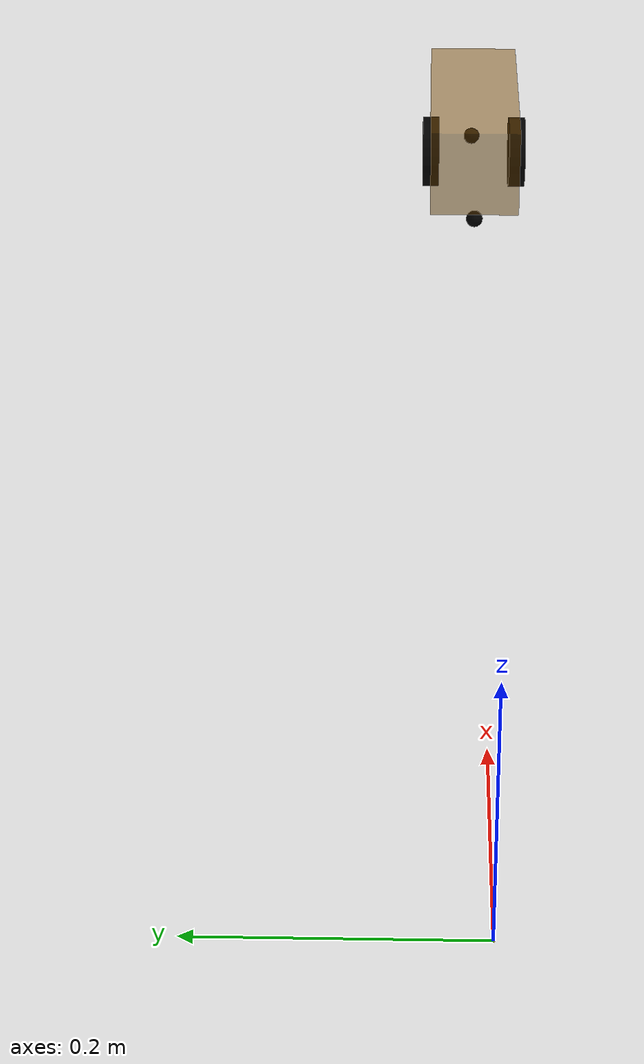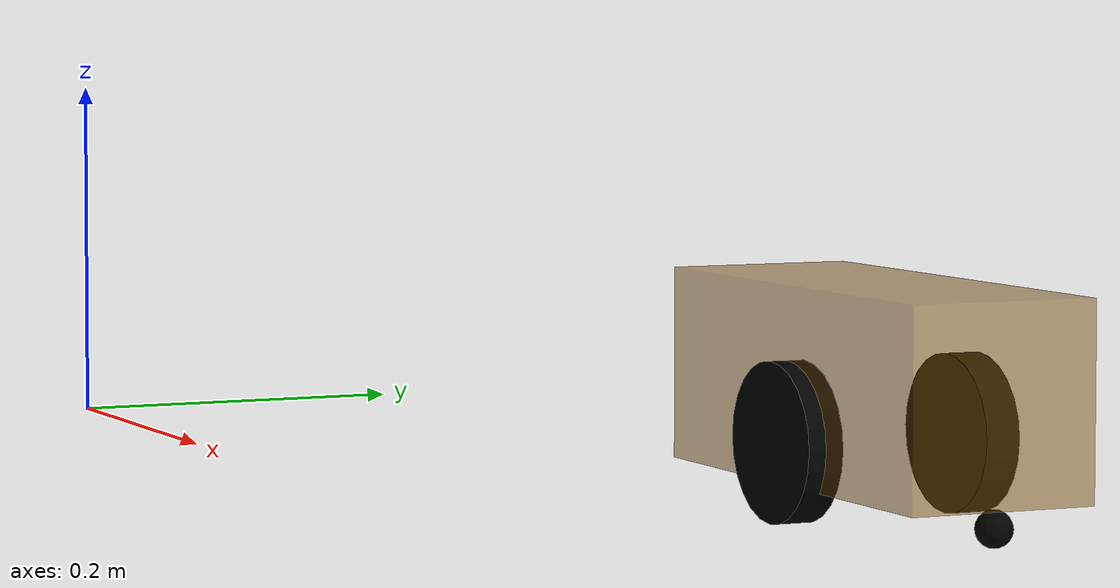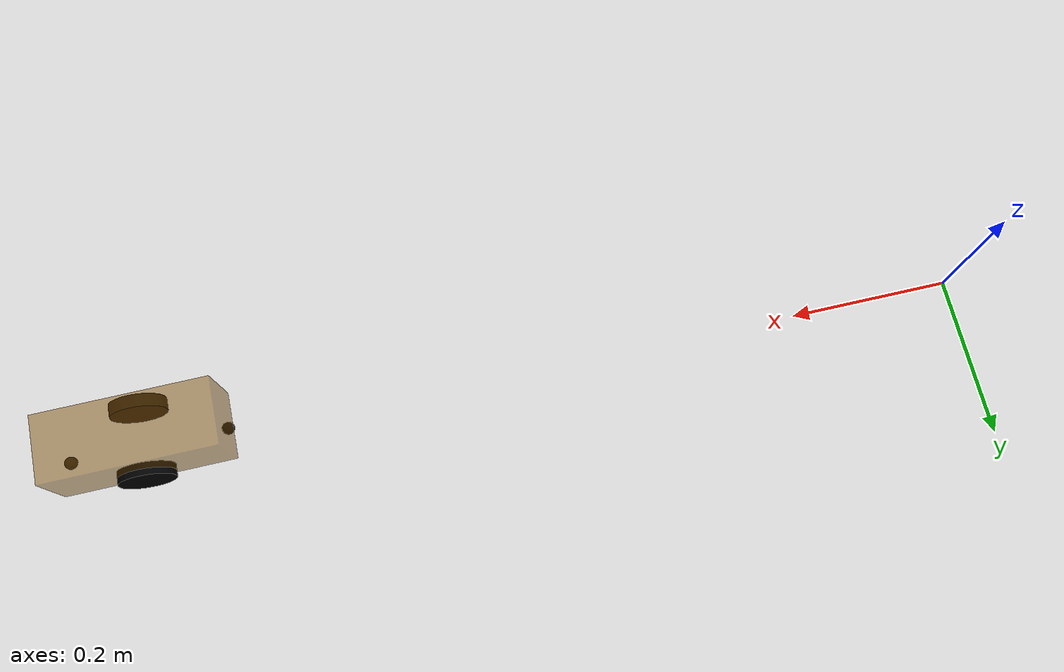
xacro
<robot name="my_baox" xmlns:xacro="http://www.ros.org/wiki/xacro">

    <xacro:property name="PI" value="3.1415926"/>

    <material name="black">
        <color rgba="0.0 0.0 0.0 1.0" />
    </material>

    <xacro:property name="base_footprint_radius" value="0.001" />

    <xacro:property name="base_link_length" value="0.2" />
    <xacro:property name="base_link_width" value="0.08" />
    <xacro:property name="base_link_height" value="0.08" />

    <xacro:property name="earth_space" value="0.015" />
    <xacro:property name="base_link_m" value="0.5" />
    <xacro:property name="origin_x" value="1.0" />
    <xacro:property name="origin_y" value="0.0" />

    <link name="base_footprint">
      <visual>
        <geometry>
          <sphere radius="${base_footprint_radius}" />
        </geometry>
      </visual>
    </link>

    <link name="base_link1">
      <visual>
        <geometry>
          <box size="${base_link_length} ${base_link_width} ${base_link_height}" />
        </geometry>
        <origin xyz="0 0 0" rpy="0 0 0" />
        <material name="yellow">
          <color rgba="0.5 0.3 0.0 0.5" />
        </material>
      </visual>
      <collision>
        <geometry>
          <box size="${base_link_length} ${base_link_width} ${base_link_height}" />
        </geometry>
        <origin xyz="0 0 0" rpy="0 0 0" />
      </collision>
      <xacro:Box_inertial_matrix m="${base_link_m}" l="${base_link_length}" w="${base_link_width}" h="${base_link_height}" />

    </link>

    <joint name="base_link2base_footprint1" type="fixed">
      <parent link="base_footprint" />
      <child link="base_link1" />
      <origin xyz="${origin_x} ${origin_y} ${earth_space + base_link_length / 2 }" />
    </joint>
    <gazebo reference="base_link1">
        <material>Gazebo/Black</material>
    </gazebo>

    <xacro:property name="wheel_radius" value="0.0325" />
    <xacro:property name="wheel_length" value="0.015" />
    <xacro:property name="wheel_m" value="0.05" />

    <xacro:macro name="add_wheels" params="name flag">
      <link name="${name}_wheel1">
        <visual>
          <geometry>
            <cylinder radius="${wheel_radius}" length="${wheel_length}" />
          </geometry>
          <origin xyz="0.0 0.0 0.0" rpy="${PI / 2} 0.0 0.0" />
          <material name="black" />
        </visual>
        <collision>
          <geometry>
            <cylinder radius="${wheel_radius}" length="${wheel_length}" />
          </geometry>
          <origin xyz="0.0 0.0 0.0" rpy="${PI / 2} 0.0 0.0" />
        </collision>
        <xacro:cylinder_inertial_matrix m="${wheel_m}" r="${wheel_radius}" h="${wheel_length}" />

      </link>

      <joint name="${name}_wheel2base_link1" type="continuous">
        <parent link="base_link1" />
        <child link="${name}_wheel1" />
        <origin xyz="0 ${flag * (base_link_width / 2)} ${-(earth_space + base_link_height / 2 - wheel_radius) }" />
        <axis xyz="0 1 0" />
      </joint>

      <gazebo reference="${name}_wheel1">
        <material>Gazebo/Red</material>
      </gazebo>

    </xacro:macro>
    <xacro:add_wheels name="left" flag="1" />
    <xacro:add_wheels name="right" flag="-1" />

    <xacro:property name="support_wheel_radius" value="0.0075" />
    <xacro:property name="support_wheel_m" value="0.03" />

    <xacro:macro name="add_support_wheel" params="name flag" >
      <link name="${name}_wheel1">
        <visual>
            <geometry>
                <sphere radius="${support_wheel_radius}" />
            </geometry>
            <origin xyz="0 0 0" rpy="0 0 0" />
            <material name="black" />
        </visual>
        <collision>
            <geometry>
                <sphere radius="${support_wheel_radius}" />
            </geometry>
            <origin xyz="0 0 0" rpy="0 0 0" />
        </collision>
        <xacro:sphere_inertial_matrix m="${support_wheel_m}" r="${support_wheel_radius}" />
      </link>

      <joint name="${name}_wheel2base_link1" type="continuous">
          <parent link="base_link1" />
          <child link="${name}_wheel1" />
          <origin xyz="${flag * ((base_link_length /2) - support_wheel_radius)} 0 ${-(base_link_height/ 2 + earth_space / 2)}" />
          <axis xyz="1 1 1" />
      </joint>
      <gazebo reference="${name}_wheel1">
        <material>Gazebo/Red</material>
      </gazebo>
    </xacro:macro>

    <xacro:add_support_wheel name="front" flag="1" />
    <xacro:add_support_wheel name="back" flag="-1" />

</robot>
